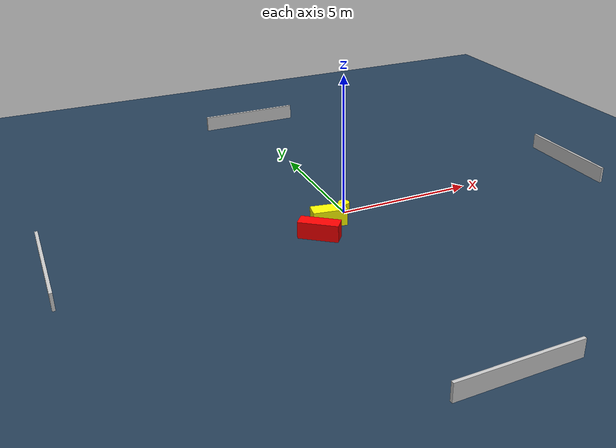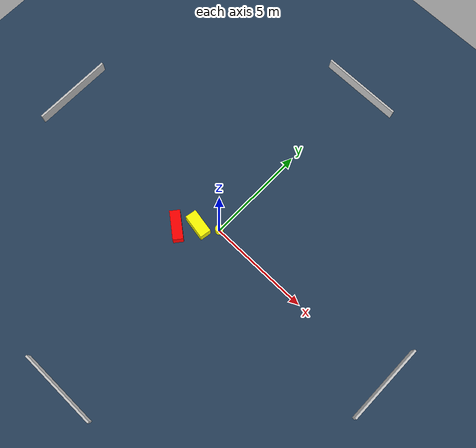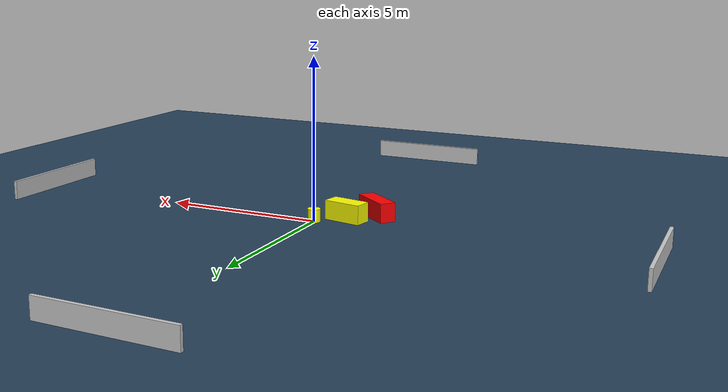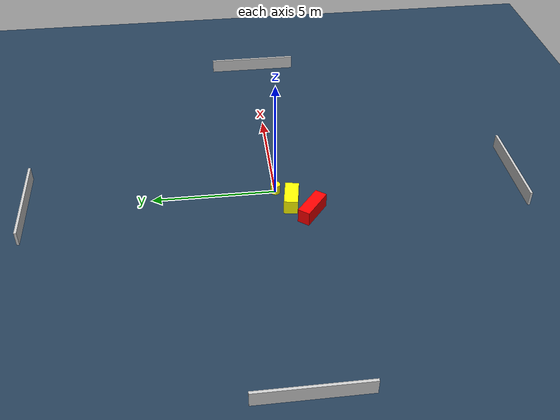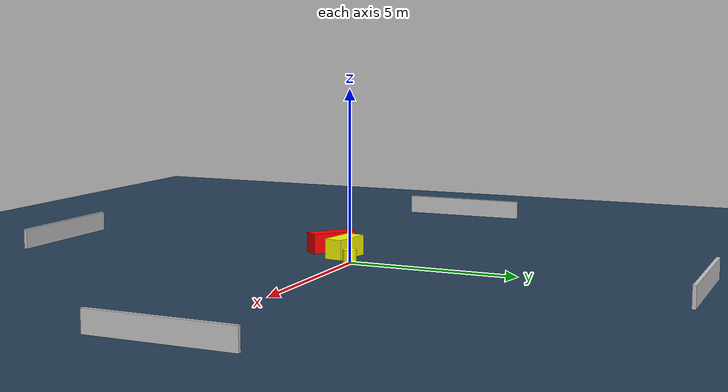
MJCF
<?xml version="1.0" ?>
<mujoco model="generated_environment">
  <option timestep="0.01" integrator="RK4" cone="elliptic"/>
  <default>
    <geom density="1"/>
  </default>
  <asset>
    <texture builtin="gradient" height="3072" name="skybox" rgb1="0.3 0.5 0.7" rgb2="0 0 0" type="skybox" width="512"/>
    <texture builtin="checker" height="300" name="groundplane" rgb1="0.2 0.3 0.4" rgb2="0.1 0.2 0.3" type="2d" width="300"/>
    <material name="groundplane" reflectance="0.2" texrepeat="5 5" texture="groundplane"/>
  </asset>
  <worldbody>
    <light dir="0 0 -1" directional="true" pos="0 0 1.5"/>
    <geom condim="3" friction="0.5 0.005 0.001" material="groundplane" name="floor" pos="0 0 0" size="0 0 0.05" type="plane"/>
    <body name="walls">
      <geom name="wall_1" condim="4" pos="-10.0 0.0 0.3" rgba="0.800000011920929 0.800000011920929 0.800000011920929 1.0" size="0.05 2.0 0.3" type="box"/>
      <geom name="wall_2" condim="4" pos="10.0 0.0 0.3" rgba="0.800000011920929 0.800000011920929 0.800000011920929 1.0" size="0.05 2.0 0.3" type="box"/>
      <geom name="wall_3" condim="4" pos="0.0 -10.0 0.3" rgba="0.800000011920929 0.800000011920929 0.800000011920929 1.0" size="2.0 0.05 0.3" type="box"/>
      <geom name="wall_4" condim="4" pos="0.0 10.0 0.3" rgba="0.800000011920929 0.800000011920929 0.800000011920929 1.0" size="2.0 0.05 0.3" type="box"/>
    </body>
    <body name="robot">
      <joint name="joint_x" type="slide" pos="0 0 0" axis="1 0 0"/>
      <joint name="joint_y" type="slide" pos="0 0 0" axis="0 1 0"/>
      <geom name="robot" type="cylinder" pos="0.0 0.0 0.2" size="0.2 0.2 0.0" mass="5.0" friction="1.0 0.005 0.0001" condim="4" rgba="1.0 1.0 0.0 1.0"/>
    </body>
    <body name="obstacle_1_movable">
      <geom name="obstacle_1_movable" condim="4" pos="-0.830646937994363 -0.5474517995507334 0.3" euler="0 0 80.05637947008576" friction="0.0 0.005 0.001" rgba="1.0 1.0 0.0 1.0" size="0.2772572660128576 0.5988392191010219 0.3" type="box" mass="0.1"/>
      <joint type="free"/>
    </body>
    <body name="obstacle_2_static">
      <geom name="obstacle_2_static" condim="4" pos="-1.5085821607691627 -1.2858917923241153 0.3" euler="0 0 321.7159100214979" friction="0.0 0.005 0.001" rgba="1.0 0.0 0.0 1.0" size="0.6979625834024314 0.2490815506152782 0.3" type="box"/>
    </body>
  </worldbody>
  <actuator>
    <motor name="actuator_x" joint="joint_x" gear="1" ctrlrange="-1 1"/>
    <motor name="actuator_y" joint="joint_y" gear="1" ctrlrange="-1 1"/>
  </actuator>
</mujoco>
